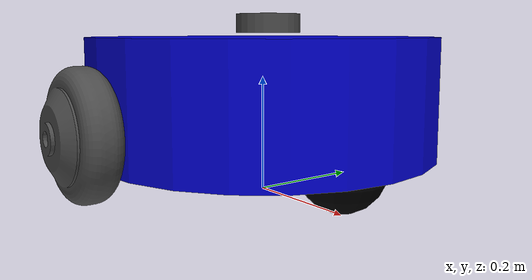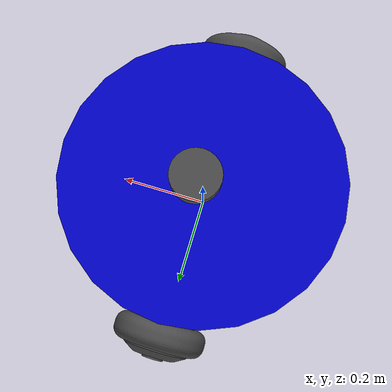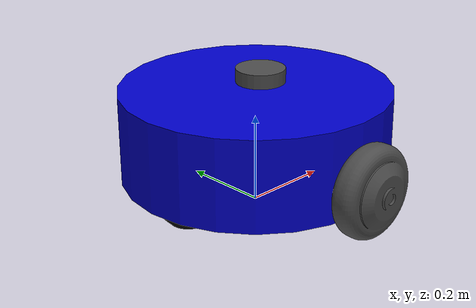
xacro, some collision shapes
<?xml version="1.0"?>

<robot xmlns:xacro="http://ros.org/wiki/xacro" name="dyno_diff_drive" >
  <xacro:arg name="use_ros_control_for_base" default="true"/>
  <xacro:arg name="base_variant" default="default"/>

  <xacro:include filename="../urdf/materials/materials.xacro"/>
  <xacro:include filename="../urdf/utils.urdf.xacro"/>
  <xacro:include filename="../urdf/plugins.gazebo.xacro"/>

  <!-- Set up definitions of parts of robot body -->
  <xacro:include filename="../urdf/base/diff_drive_base.urdf.xacro"/>

  <xacro:include filename="../urdf/sensors/lds_lfcd.urdf.xacro"/>

  <!-- Use macros to define the actual robot -->
  <base/>

  <!-- Laser Scanner -->
  <lds_lfcd name="base_scan" x_offset="0" y_offset="0" z_offset="0.17" yaw_offset="0" parent="base_link"/>

  <!-- Imu -->

</robot>

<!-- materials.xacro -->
<robot>
  <material name="black">
      <color rgba="0.0 0.0 0.0 1.0"/>
  </material>

  <material name="dark">
    <color rgba="0.3 0.3 0.3 1.0"/>
  </material>
  <material name="light_black">
    <color rgba="0.4 0.4 0.4 1.0"/>
  </material>

  <material name="blue">
    <color rgba="0.0 0.0 0.8 1.0"/>
  </material>

  <material name="light_blue">
    <color rgba="0.3 0.3 0.8 1.0"/>
  </material>

  <material name="green">
    <color rgba="0.0 0.8 0.0 1.0"/>
  </material>

  <material name="grey">
    <color rgba="0.5 0.5 0.5 1.0"/>
  </material>

  <material name="orange">
    <color rgba="${255/255} ${108/255} ${10/255} 1.0"/>
  </material>

  <material name="brown">
    <color rgba="${222/255} ${207/255} ${195/255} 1.0"/>
  </material>

  <material name="red">
    <color rgba="0.8 0.0 0.0 1.0"/>
  </material>

  <material name="white">
    <color rgba="1.0 1.0 1.0 1.0"/>
  </material>

</robot>

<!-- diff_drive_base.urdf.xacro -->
<!-- Guidebot differential drive base -->

<robot xmlns:xacro="http://ros.org/wiki/xacro">

  <xacro:include filename="diff_drive_base.gazebo.xacro"/>

  <xacro:include filename="../wheels/diff_drive/drive_wheel.urdf.xacro"/>
  <xacro:include filename="../wheels/diff_drive/caster.urdf.xacro"/>

  <!-- Drive wheel characteristics -->
  <xacro:property name="wheel_radius"     value="0.13"/>
  <xacro:property name="wheel_width"      value="0.05"/>
  <xacro:property name="wheel_separation" value="0.65"/>
  <xacro:property name="wheel_torque"     value="6.0"/>
  <xacro:property name="wheel_velocity"   value="1.0"/>

  <!-- Caster characteristics -->
  <xacro:property name="caster_radius" value="0.07"/>
  <xacro:property name="caster_ground_offset" value="0.005"/>

  <!-- Base -->
  <xacro:macro name="base">
    <link name="base_link">
      <visual>
        <origin xyz="0 0 0.04" rpy="0 0 0"/>
        <geometry>
          <cylinder length="0.2" radius="0.3"/>
        </geometry>
        <material name="blue"/>
      </visual>

      <collision>
        <origin xyz="0 0 0.04" rpy="0 0 0"/>
        <geometry>
          <cylinder length="0.2" radius="0.3"/>
        </geometry>
        <material name="orange"/>
      </collision>

      <!-- TODO: update according to real base properties -->
      <inertial>
        <origin xyz="-0.00000106 0.00000109 0.0000387" rpy="0 0 0"/>
        <mass value="15.0"/>
        <inertia ixx="0.465408937" ixy="0.002160024" ixz="-0.001760255"
                 iyy="0.483193291" iyz="-0.000655952"
                 izz="0.550939703"/>
      </inertial>
    </link>

    <!-- Base footprint -->
    <link name="base_footprint"/>

    <joint name="base_footprint_joint" type="fixed">
      <origin xyz="0 0 ${wheel_radius}" rpy="0 0 0"/>
      <parent link="base_footprint"/>
      <child link="base_link"/>
    </joint>

    <!-- Macros -->
    <drive_wheel name="wheel_right" radius="${wheel_radius}" width="${wheel_width}" separation="${wheel_separation}" reflect="1.0" parent="base_link"/>
    <drive_wheel name="wheel_left" radius="${wheel_radius}" width="${wheel_width}" separation="${wheel_separation}" reflect="-1.0" parent="base_link"/>

    <caster name="front_caster" radius="${caster_radius}" x_offset="0.2" z_offset="${caster_ground_offset - (wheel_radius - caster_radius)}" parent="base_link"/>
    <caster name="rear_caster" radius="${caster_radius}" x_offset="-0.2" z_offset="${caster_ground_offset - (wheel_radius - caster_radius)}" parent="base_link"/>

    <!-- Gazebo extentions -->
    <diff_drive_base_gazebo/>
  </xacro:macro>

</robot>

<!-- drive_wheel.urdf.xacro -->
<robot xmlns:xacro="http://ros.org/wiki/xacro">

  <xacro:include filename="drive_wheel.gazebo.xacro"/>
  <xacro:include filename="drive_wheel.transmission.xacro"/>

  <xacro:macro name="drive_wheel" params="name radius width separation reflect parent">
    <link name="${name}_link">
      <visual>
        <origin xyz="0 0 0" rpy="0 0 0"/>
        <geometry>
          <mesh filename="package://dyno_description/meshes/wheels/magni_wheel.dae" scale="0.0118 0.0118 ${-0.0118 * reflect}"/>
        </geometry>
      </visual>

      <collision>
        <origin xyz="0 0 0" rpy="0 0 0"/>
        <geometry>
          <cylinder radius="${radius}" length="${width}"/>
        </geometry>
        <material name="orange"/>
      </collision>

      <inertial>
        <origin xyz="0 0 ${-0.00207 * reflect}" rpy="0 0 0"/>
        <!-- TODO: update according to real wheel properties -->
        <mass value="1.0"/>
        <inertia ixx="0.00499743171" ixy="${ 0.00000004464 * reflect}" ixz="-0.00000002245"
                 iyy="0.00499741733" iyz="${-0.00000000164 * reflect}"
                 izz="0.00839239692"/>
      </inertial>

    </link>

    <joint name="${name}_joint" type="continuous">
      <origin xyz="0 ${-separation / 2 * reflect} 0" rpy="${-pi/2} 0 0"/>
      <parent link="${parent}"/>
      <child link="${name}_link"/>
      <axis xyz="0 0 1"/>
      <limit effort="10000" velocity="10000"/>
    </joint>

    <!-- Transmission -->

    <xacro:if value="$(arg use_ros_control_for_base)">
      <wheel_transmission name="${name}"/>
    </xacro:if>

    <!-- Gazebo extensions -->
    <drive_wheel_gazebo name="${name}"/>

  </xacro:macro>
</robot>

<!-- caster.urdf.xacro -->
<robot xmlns:xacro="http://ros.org/wiki/xacro">

  <xacro:include filename="caster.gazebo.xacro"/>

  <xacro:macro name="caster" params="name radius x_offset z_offset parent">
    <link name="${name}_link">
      <visual>
        <origin xyz="0 0 0" rpy="0 0 0"/>
        <geometry>
          <sphere radius="${radius}"/>
        </geometry>
        <material name="black"/>
      </visual>

      <collision>
        <origin xyz="0 0 0" rpy="0 0 0"/>
        <geometry>
          <sphere radius="${radius}"/>
        </geometry>
        <material name="orange"/>
      </collision>

      <inertial>
        <origin xyz="${x_offset} 0 0" rpy="0 0 0"/>
        <mass value="0.2"/>
        <inertia ixx="0.001" ixy="0" ixz="0"
                 iyy="0.001" iyz="0"
                 izz="0.001"/>
      </inertial>

    </link>

    <joint name="${name}_joint" type="fixed">
      <origin xyz="${x_offset} 0 ${z_offset}" rpy="0 0 0"/>
      <parent link="${parent}"/>
      <child link="${name}_link"/>
    </joint>

    <!-- Gazebo extensions -->
    <caster_gazebo name="${name}"/>

  </xacro:macro>
</robot>

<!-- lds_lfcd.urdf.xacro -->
<robot xmlns:xacro="http://ros.org/wiki/xacro">
  <xacro:include filename="lds_lfcd.gazebo.xacro"/>

  <xacro:macro name="lds_lfcd" params="name x_offset y_offset z_offset yaw_offset parent">
    <joint name="${name}_joint" type="fixed">
      <parent link="${parent}"/>
      <child link="${name}_link"/>
      <origin xyz="${x_offset} ${y_offset} ${z_offset}" rpy="0 0 ${yaw_offset}"/>
    </joint>

    <link name="${name}_link">
      <visual>
        <origin xyz="0 0 0.0" rpy="0 0 0"/>
        <geometry>
          <mesh filename="package://dyno_description/meshes/sensors/lds.stl" scale="0.001 0.001 0.001"/>
        </geometry>
        <material name="dark"/>
      </visual>

      <collision>
        <origin xyz="0.015 0 -0.0065" rpy="0 0 0"/>
        <geometry>
          <cylinder length="0.0315" radius="0.055"/>
        </geometry>
      </collision>

      <inertial>
        <mass value="0.114" />
        <origin xyz="0 0 0" />
        <inertia ixx="0.001" ixy="0.0" ixz="0.0"
                 iyy="0.001" iyz="0.0"
                 izz="0.001" />
      </inertial>
    </link>

    <lds_lfcd_gazebo name="${name}"/>
  </xacro:macro>

</robot>
